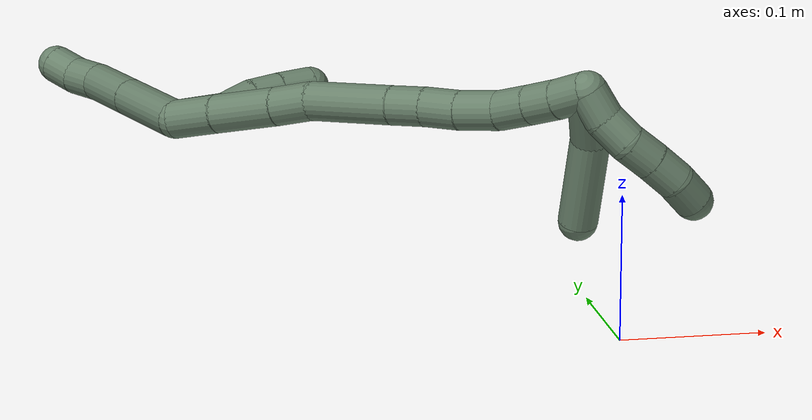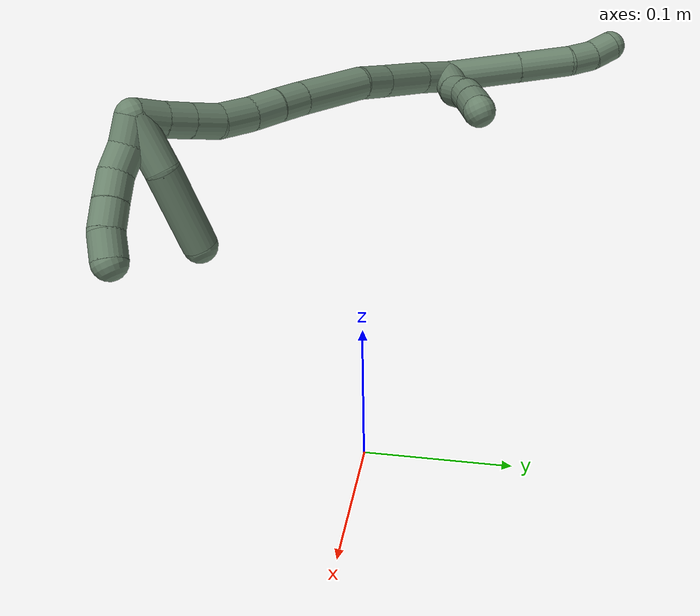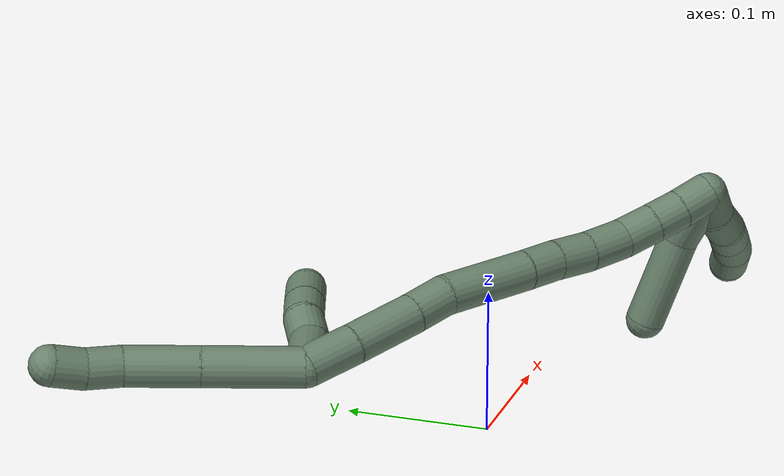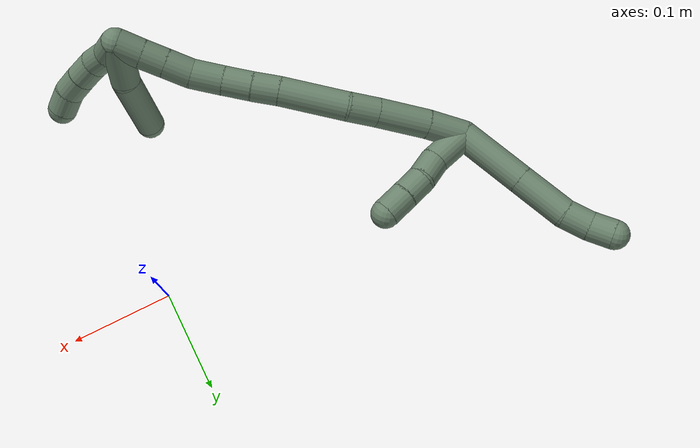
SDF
<sdf version="1.7">
 <world name="default">
  <model name="17">
   <static>0</static>
   <link name="17">
    <collision name="collision-cylinder-e_1_2_8">
     <pose>-0.013734 0.026094 -0.007672 -1.85674 -0.467612 0.616246</pose>
     <geometry><cylinder><radius>0.0125</radius><length>0.060938</length></cylinder></geometry>
     <surface>
      <friction><ode><mu>1.16</mu><mu2>1.16</mu2><slip1>0</slip1><slip2>0</slip2></ode></friction>
      <contact><ode><kp>1e+06</kp><kd>1</kd><max_vel>0</max_vel><min_depth>0.001</min_depth></ode></contact>
     </surface>
    </collision>
    <visual name="visual-cylinder-e_1_2_8">
     <pose>-0.013734 0.026094 -0.007672 -1.85674 -0.467612 0.616246</pose>
     <geometry><cylinder><radius>0.0125</radius><length>0.060938</length></cylinder></geometry>
     <material><ambient>0.415686 0.509804 0.423529 1</ambient></material>
    </visual>
    <collision name="collision-cylinder-e_2_8_9">
     <pose>-0.037782 0.071706 -0.021037 -1.85466 -0.469428 0.617322</pose>
     <geometry><cylinder><radius>0.0125</radius><length>0.045596</length></cylinder></geometry>
     <surface>
      <friction><ode><mu>1.16</mu><mu2>1.16</mu2><slip1>0</slip1><slip2>0</slip2></ode></friction>
      <contact><ode><kp>1e+06</kp><kd>1</kd><max_vel>0</max_vel><min_depth>0.001</min_depth></ode></contact>
     </surface>
    </collision>
    <visual name="visual-cylinder-e_2_8_9">
     <pose>-0.037782 0.071706 -0.021037 -1.85466 -0.469428 0.617322</pose>
     <geometry><cylinder><radius>0.0125</radius><length>0.045596</length></cylinder></geometry>
     <material><ambient>0.415686 0.509804 0.423529 1</ambient></material>
    </visual>
    <collision name="collision-cylinder-e_3_9_10">
     <pose>-0.055018 0.100139 -0.02806 -1.71873 -0.655007 0.750851</pose>
     <geometry><cylinder><radius>0.0125</radius><length>0.02273</length></cylinder></geometry>
     <surface>
      <friction><ode><mu>1.16</mu><mu2>1.16</mu2><slip1>0</slip1><slip2>0</slip2></ode></friction>
      <contact><ode><kp>1e+06</kp><kd>1</kd><max_vel>0</max_vel><min_depth>0.001</min_depth></ode></contact>
     </surface>
    </collision>
    <visual name="visual-cylinder-e_3_9_10">
     <pose>-0.055018 0.100139 -0.02806 -1.71873 -0.655007 0.750851</pose>
     <geometry><cylinder><radius>0.0125</radius><length>0.02273</length></cylinder></geometry>
     <material><ambient>0.415686 0.509804 0.423529 1</ambient></material>
    </visual>
    <collision name="collision-cylinder-e_4_10_6">
     <pose>-0.067568 0.11772 -0.028542 -1.47337 -0.573689 0.522864</pose>
     <geometry><cylinder><radius>0.0125</radius><length>0.020735</length></cylinder></geometry>
     <surface>
      <friction><ode><mu>1.16</mu><mu2>1.16</mu2><slip1>0</slip1><slip2>0</slip2></ode></friction>
      <contact><ode><kp>1e+06</kp><kd>1</kd><max_vel>0</max_vel><min_depth>0.001</min_depth></ode></contact>
     </surface>
    </collision>
    <visual name="visual-cylinder-e_4_10_6">
     <pose>-0.067568 0.11772 -0.028542 -1.47337 -0.573689 0.522864</pose>
     <geometry><cylinder><radius>0.0125</radius><length>0.020735</length></cylinder></geometry>
     <material><ambient>0.415686 0.509804 0.423529 1</ambient></material>
    </visual>
    <collision name="collision-cylinder-e_1_2_11">
     <pose>0.014577 0.002784 -0.008865 -2.8373 1.00331 -2.59638</pose>
     <geometry><cylinder><radius>0.0125</radius><length>0.034572</length></cylinder></geometry>
     <surface>
      <friction><ode><mu>1.16</mu><mu2>1.16</mu2><slip1>0</slip1><slip2>0</slip2></ode></friction>
      <contact><ode><kp>1e+06</kp><kd>1</kd><max_vel>0</max_vel><min_depth>0.001</min_depth></ode></contact>
     </surface>
    </collision>
    <visual name="visual-cylinder-e_1_2_11">
     <pose>0.014577 0.002784 -0.008865 -2.8373 1.00331 -2.59638</pose>
     <geometry><cylinder><radius>0.0125</radius><length>0.034572</length></cylinder></geometry>
     <material><ambient>0.415686 0.509804 0.423529 1</ambient></material>
    </visual>
    <collision name="collision-cylinder-e_2_11_12">
     <pose>0.038124 0.010724 -0.022094 -2.27324 0.925342 -1.64368</pose>
     <geometry><cylinder><radius>0.0125</radius><length>0.02246</length></cylinder></geometry>
     <surface>
      <friction><ode><mu>1.16</mu><mu2>1.16</mu2><slip1>0</slip1><slip2>0</slip2></ode></friction>
      <contact><ode><kp>1e+06</kp><kd>1</kd><max_vel>0</max_vel><min_depth>0.001</min_depth></ode></contact>
     </surface>
    </collision>
    <visual name="visual-cylinder-e_2_11_12">
     <pose>0.038124 0.010724 -0.022094 -2.27324 0.925342 -1.64368</pose>
     <geometry><cylinder><radius>0.0125</radius><length>0.02246</length></cylinder></geometry>
     <material><ambient>0.415686 0.509804 0.423529 1</ambient></material>
    </visual>
    <collision name="collision-cylinder-e_3_12_13">
     <pose>0.055733 0.018329 -0.031326 -2.67547 1.00802 -2.32872</pose>
     <geometry><cylinder><radius>0.0125</radius><length>0.020427</length></cylinder></geometry>
     <surface>
      <friction><ode><mu>1.16</mu><mu2>1.16</mu2><slip1>0</slip1><slip2>0</slip2></ode></friction>
      <contact><ode><kp>1e+06</kp><kd>1</kd><max_vel>0</max_vel><min_depth>0.001</min_depth></ode></contact>
     </surface>
    </collision>
    <visual name="visual-cylinder-e_3_12_13">
     <pose>0.055733 0.018329 -0.031326 -2.67547 1.00802 -2.32872</pose>
     <geometry><cylinder><radius>0.0125</radius><length>0.020427</length></cylinder></geometry>
     <material><ambient>0.415686 0.509804 0.423529 1</ambient></material>
    </visual>
    <collision name="collision-cylinder-e_4_13_5">
     <pose>0.073821 0.023094 -0.041883 -2.75497 0.994467 -2.44925</pose>
     <geometry><cylinder><radius>0.0125</radius><length>0.022541</length></cylinder></geometry>
     <surface>
      <friction><ode><mu>1.16</mu><mu2>1.16</mu2><slip1>0</slip1><slip2>0</slip2></ode></friction>
      <contact><ode><kp>1e+06</kp><kd>1</kd><max_vel>0</max_vel><min_depth>0.001</min_depth></ode></contact>
     </surface>
    </collision>
    <visual name="visual-cylinder-e_4_13_5">
     <pose>0.073821 0.023094 -0.041883 -2.75497 0.994467 -2.44925</pose>
     <geometry><cylinder><radius>0.0125</radius><length>0.022541</length></cylinder></geometry>
     <material><ambient>0.415686 0.509804 0.423529 1</ambient></material>
    </visual>
    <collision name="collision-cylinder-e_1_2_14">
     <pose>0.014027 -0.008222 0.002383 1.28871 1.02282 0.798071</pose>
     <geometry><cylinder><radius>0.0125</radius><length>0.032865</length></cylinder></geometry>
     <surface>
      <friction><ode><mu>1.16</mu><mu2>1.16</mu2><slip1>0</slip1><slip2>0</slip2></ode></friction>
      <contact><ode><kp>1e+06</kp><kd>1</kd><max_vel>0</max_vel><min_depth>0.001</min_depth></ode></contact>
     </surface>
    </collision>
    <visual name="visual-cylinder-e_1_2_14">
     <pose>0.014027 -0.008222 0.002383 1.28871 1.02282 0.798071</pose>
     <geometry><cylinder><radius>0.0125</radius><length>0.032865</length></cylinder></geometry>
     <material><ambient>0.415686 0.509804 0.423529 1</ambient></material>
    </visual>
    <collision name="collision-cylinder-e_2_14_15">
     <pose>0.04745 -0.026805 0.006834 1.37377 1.07207 0.906697</pose>
     <geometry><cylinder><radius>0.0125</radius><length>0.044173</length></cylinder></geometry>
     <surface>
      <friction><ode><mu>1.16</mu><mu2>1.16</mu2><slip1>0</slip1><slip2>0</slip2></ode></friction>
      <contact><ode><kp>1e+06</kp><kd>1</kd><max_vel>0</max_vel><min_depth>0.001</min_depth></ode></contact>
     </surface>
    </collision>
    <visual name="visual-cylinder-e_2_14_15">
     <pose>0.04745 -0.026805 0.006834 1.37377 1.07207 0.906697</pose>
     <geometry><cylinder><radius>0.0125</radius><length>0.044173</length></cylinder></geometry>
     <material><ambient>0.415686 0.509804 0.423529 1</ambient></material>
    </visual>
    <collision name="collision-cylinder-e_3_15_16">
     <pose>0.078296 -0.042667 0.01001 1.37213 1.11499 0.943951</pose>
     <geometry><cylinder><radius>0.0125</radius><length>0.025504</length></cylinder></geometry>
     <surface>
      <friction><ode><mu>1.16</mu><mu2>1.16</mu2><slip1>0</slip1><slip2>0</slip2></ode></friction>
      <contact><ode><kp>1e+06</kp><kd>1</kd><max_vel>0</max_vel><min_depth>0.001</min_depth></ode></contact>
     </surface>
    </collision>
    <visual name="visual-cylinder-e_3_15_16">
     <pose>0.078296 -0.042667 0.01001 1.37213 1.11499 0.943951</pose>
     <geometry><cylinder><radius>0.0125</radius><length>0.025504</length></cylinder></geometry>
     <material><ambient>0.415686 0.509804 0.423529 1</ambient></material>
    </visual>
    <collision name="collision-cylinder-e_4_16_17">
     <pose>0.113301 -0.065191 0.011513 1.54758 0.944959 0.926269</pose>
     <geometry><cylinder><radius>0.0125</radius><length>0.058128</length></cylinder></geometry>
     <surface>
      <friction><ode><mu>1.16</mu><mu2>1.16</mu2><slip1>0</slip1><slip2>0</slip2></ode></friction>
      <contact><ode><kp>1e+06</kp><kd>1</kd><max_vel>0</max_vel><min_depth>0.001</min_depth></ode></contact>
     </surface>
    </collision>
    <visual name="visual-cylinder-e_4_16_17">
     <pose>0.113301 -0.065191 0.011513 1.54758 0.944959 0.926269</pose>
     <geometry><cylinder><radius>0.0125</radius><length>0.058128</length></cylinder></geometry>
     <material><ambient>0.415686 0.509804 0.423529 1</ambient></material>
    </visual>
    <collision name="collision-cylinder-e_5_17_18">
     <pose>0.146359 -0.088516 0.01161 1.61799 0.984433 1.02427</pose>
     <geometry><cylinder><radius>0.0125</radius><length>0.022816</length></cylinder></geometry>
     <surface>
      <friction><ode><mu>1.16</mu><mu2>1.16</mu2><slip1>0</slip1><slip2>0</slip2></ode></friction>
      <contact><ode><kp>1e+06</kp><kd>1</kd><max_vel>0</max_vel><min_depth>0.001</min_depth></ode></contact>
     </surface>
    </collision>
    <visual name="visual-cylinder-e_5_17_18">
     <pose>0.146359 -0.088516 0.01161 1.61799 0.984433 1.02427</pose>
     <geometry><cylinder><radius>0.0125</radius><length>0.022816</length></cylinder></geometry>
     <material><ambient>0.415686 0.509804 0.423529 1</ambient></material>
    </visual>
    <collision name="collision-cylinder-e_6_18_19">
     <pose>0.165518 -0.102181 0.011025 1.60981 0.919195 0.950586</pose>
     <geometry><cylinder><radius>0.0125</radius><length>0.024289</length></cylinder></geometry>
     <surface>
      <friction><ode><mu>1.16</mu><mu2>1.16</mu2><slip1>0</slip1><slip2>0</slip2></ode></friction>
      <contact><ode><kp>1e+06</kp><kd>1</kd><max_vel>0</max_vel><min_depth>0.001</min_depth></ode></contact>
     </surface>
    </collision>
    <visual name="visual-cylinder-e_6_18_19">
     <pose>0.165518 -0.102181 0.011025 1.60981 0.919195 0.950586</pose>
     <geometry><cylinder><radius>0.0125</radius><length>0.024289</length></cylinder></geometry>
     <material><ambient>0.415686 0.509804 0.423529 1</ambient></material>
    </visual>
    <collision name="collision-cylinder-e_7_19_20">
     <pose>0.186518 -0.116966 0.011133 1.51763 0.990583 0.94675</pose>
     <geometry><cylinder><radius>0.0125</radius><length>0.027128</length></cylinder></geometry>
     <surface>
      <friction><ode><mu>1.16</mu><mu2>1.16</mu2><slip1>0</slip1><slip2>0</slip2></ode></friction>
      <contact><ode><kp>1e+06</kp><kd>1</kd><max_vel>0</max_vel><min_depth>0.001</min_depth></ode></contact>
     </surface>
    </collision>
    <visual name="visual-cylinder-e_7_19_20">
     <pose>0.186518 -0.116966 0.011133 1.51763 0.990583 0.94675</pose>
     <geometry><cylinder><radius>0.0125</radius><length>0.027128</length></cylinder></geometry>
     <material><ambient>0.415686 0.509804 0.423529 1</ambient></material>
    </visual>
    <collision name="collision-cylinder-e_8_20_21">
     <pose>0.207402 -0.130212 0.014261 1.13184 0.97771 0.651694</pose>
     <geometry><cylinder><radius>0.0125</radius><length>0.023007</length></cylinder></geometry>
     <surface>
      <friction><ode><mu>1.16</mu><mu2>1.16</mu2><slip1>0</slip1><slip2>0</slip2></ode></friction>
      <contact><ode><kp>1e+06</kp><kd>1</kd><max_vel>0</max_vel><min_depth>0.001</min_depth></ode></contact>
     </surface>
    </collision>
    <visual name="visual-cylinder-e_8_20_21">
     <pose>0.207402 -0.130212 0.014261 1.13184 0.97771 0.651694</pose>
     <geometry><cylinder><radius>0.0125</radius><length>0.023007</length></cylinder></geometry>
     <material><ambient>0.415686 0.509804 0.423529 1</ambient></material>
    </visual>
    <collision name="collision-cylinder-e_9_21_22">
     <pose>0.225463 -0.141059 0.019469 1.11322 0.989139 0.6475</pose>
     <geometry><cylinder><radius>0.0125</radius><length>0.020398</length></cylinder></geometry>
     <surface>
      <friction><ode><mu>1.16</mu><mu2>1.16</mu2><slip1>0</slip1><slip2>0</slip2></ode></friction>
      <contact><ode><kp>1e+06</kp><kd>1</kd><max_vel>0</max_vel><min_depth>0.001</min_depth></ode></contact>
     </surface>
    </collision>
    <visual name="visual-cylinder-e_9_21_22">
     <pose>0.225463 -0.141059 0.019469 1.11322 0.989139 0.6475</pose>
     <geometry><cylinder><radius>0.0125</radius><length>0.020398</length></cylinder></geometry>
     <material><ambient>0.415686 0.509804 0.423529 1</ambient></material>
    </visual>
    <collision name="collision-cylinder-e_10_22_1">
     <pose>0.243149 -0.15098 0.025058 1.0042 1.00654 0.587086</pose>
     <geometry><cylinder><radius>0.0125</radius><length>0.021691</length></cylinder></geometry>
     <surface>
      <friction><ode><mu>1.16</mu><mu2>1.16</mu2><slip1>0</slip1><slip2>0</slip2></ode></friction>
      <contact><ode><kp>1e+06</kp><kd>1</kd><max_vel>0</max_vel><min_depth>0.001</min_depth></ode></contact>
     </surface>
    </collision>
    <visual name="visual-cylinder-e_10_22_1">
     <pose>0.243149 -0.15098 0.025058 1.0042 1.00654 0.587086</pose>
     <geometry><cylinder><radius>0.0125</radius><length>0.021691</length></cylinder></geometry>
     <material><ambient>0.415686 0.509804 0.423529 1</ambient></material>
    </visual>
    <collision name="collision-cylinder-e_1_1_23">
     <pose>0.253314 -0.161735 0.020131 2.51166 0.100288 0.305662</pose>
     <geometry><cylinder><radius>0.0125</radius><length>0.02</length></cylinder></geometry>
     <surface>
      <friction><ode><mu>1.16</mu><mu2>1.16</mu2><slip1>0</slip1><slip2>0</slip2></ode></friction>
      <contact><ode><kp>1e+06</kp><kd>1</kd><max_vel>0</max_vel><min_depth>0.001</min_depth></ode></contact>
     </surface>
    </collision>
    <visual name="visual-cylinder-e_1_1_23">
     <pose>0.253314 -0.161735 0.020131 2.51166 0.100288 0.305662</pose>
     <geometry><cylinder><radius>0.0125</radius><length>0.02</length></cylinder></geometry>
     <material><ambient>0.415686 0.509804 0.423529 1</ambient></material>
    </visual>
    <collision name="collision-cylinder-e_2_23_24">
     <pose>0.257833 -0.173571 0.004885 2.44927 0.359428 0.933198</pose>
     <geometry><cylinder><radius>0.0125</radius><length>0.02</length></cylinder></geometry>
     <surface>
      <friction><ode><mu>1.16</mu><mu2>1.16</mu2><slip1>0</slip1><slip2>0</slip2></ode></friction>
      <contact><ode><kp>1e+06</kp><kd>1</kd><max_vel>0</max_vel><min_depth>0.001</min_depth></ode></contact>
     </surface>
    </collision>
    <visual name="visual-cylinder-e_2_23_24">
     <pose>0.257833 -0.173571 0.004885 2.44927 0.359428 0.933198</pose>
     <geometry><cylinder><radius>0.0125</radius><length>0.02</length></cylinder></geometry>
     <material><ambient>0.415686 0.509804 0.423529 1</ambient></material>
    </visual>
    <collision name="collision-cylinder-e_3_24_25">
     <pose>0.265712 -0.183048 -0.010611 2.74198 0.451311 1.69587</pose>
     <geometry><cylinder><radius>0.0125</radius><length>0.02</length></cylinder></geometry>
     <surface>
      <friction><ode><mu>1.16</mu><mu2>1.16</mu2><slip1>0</slip1><slip2>0</slip2></ode></friction>
      <contact><ode><kp>1e+06</kp><kd>1</kd><max_vel>0</max_vel><min_depth>0.001</min_depth></ode></contact>
     </surface>
    </collision>
    <visual name="visual-cylinder-e_3_24_25">
     <pose>0.265712 -0.183048 -0.010611 2.74198 0.451311 1.69587</pose>
     <geometry><cylinder><radius>0.0125</radius><length>0.02</length></cylinder></geometry>
     <material><ambient>0.415686 0.509804 0.423529 1</ambient></material>
    </visual>
    <collision name="collision-cylinder-e_4_25_26">
     <pose>0.27402 -0.190061 -0.027391 2.74934 0.405698 1.60541</pose>
     <geometry><cylinder><radius>0.0125</radius><length>0.02</length></cylinder></geometry>
     <surface>
      <friction><ode><mu>1.16</mu><mu2>1.16</mu2><slip1>0</slip1><slip2>0</slip2></ode></friction>
      <contact><ode><kp>1e+06</kp><kd>1</kd><max_vel>0</max_vel><min_depth>0.001</min_depth></ode></contact>
     </surface>
    </collision>
    <visual name="visual-cylinder-e_4_25_26">
     <pose>0.27402 -0.190061 -0.027391 2.74934 0.405698 1.60541</pose>
     <geometry><cylinder><radius>0.0125</radius><length>0.02</length></cylinder></geometry>
     <material><ambient>0.415686 0.509804 0.423529 1</ambient></material>
    </visual>
    <collision name="collision-cylinder-e_5_26_4">
     <pose>0.280404 -0.195385 -0.045409 2.95369 0.246191 1.83978</pose>
     <geometry><cylinder><radius>0.0125</radius><length>0.02</length></cylinder></geometry>
     <surface>
      <friction><ode><mu>1.16</mu><mu2>1.16</mu2><slip1>0</slip1><slip2>0</slip2></ode></friction>
      <contact><ode><kp>1e+06</kp><kd>1</kd><max_vel>0</max_vel><min_depth>0.001</min_depth></ode></contact>
     </surface>
    </collision>
    <visual name="visual-cylinder-e_5_26_4">
     <pose>0.280404 -0.195385 -0.045409 2.95369 0.246191 1.83978</pose>
     <geometry><cylinder><radius>0.0125</radius><length>0.02</length></cylinder></geometry>
     <material><ambient>0.415686 0.509804 0.423529 1</ambient></material>
    </visual>
    <collision name="collision-cylinder-e_1_1_27">
     <pose>0.246893 -0.156624 0.009325 3.10177 -0.279849 -2.86065</pose>
     <geometry><cylinder><radius>0.0125</radius><length>0.039248</length></cylinder></geometry>
     <surface>
      <friction><ode><mu>1.16</mu><mu2>1.16</mu2><slip1>0</slip1><slip2>0</slip2></ode></friction>
      <contact><ode><kp>1e+06</kp><kd>1</kd><max_vel>0</max_vel><min_depth>0.001</min_depth></ode></contact>
     </surface>
    </collision>
    <visual name="visual-cylinder-e_1_1_27">
     <pose>0.246893 -0.156624 0.009325 3.10177 -0.279849 -2.86065</pose>
     <geometry><cylinder><radius>0.0125</radius><length>0.039248</length></cylinder></geometry>
     <material><ambient>0.415686 0.509804 0.423529 1</ambient></material>
    </visual>
    <collision name="collision-cylinder-e_2_27_3">
     <pose>0.226958 -0.162511 -0.035705 2.9479 -0.498189 -2.41195</pose>
     <geometry><cylinder><radius>0.0125</radius><length>0.060752</length></cylinder></geometry>
     <surface>
      <friction><ode><mu>1.16</mu><mu2>1.16</mu2><slip1>0</slip1><slip2>0</slip2></ode></friction>
      <contact><ode><kp>1e+06</kp><kd>1</kd><max_vel>0</max_vel><min_depth>0.001</min_depth></ode></contact>
     </surface>
    </collision>
    <visual name="visual-cylinder-e_2_27_3">
     <pose>0.226958 -0.162511 -0.035705 2.9479 -0.498189 -2.41195</pose>
     <geometry><cylinder><radius>0.0125</radius><length>0.060752</length></cylinder></geometry>
     <material><ambient>0.415686 0.509804 0.423529 1</ambient></material>
    </visual>
    <collision name="collision-sphere-3">
     <pose>0.212443 -0.167648 -0.06189 0 -0 0</pose>
     <geometry><sphere><radius>0.0125</radius></sphere></geometry>
     <surface>
      <friction><ode><mu>1.16</mu><mu2>1.16</mu2><slip1>0</slip1><slip2>0</slip2></ode></friction>
      <contact><ode><kp>1e+06</kp><kd>1</kd><max_vel>0</max_vel><min_depth>0.001</min_depth></ode></contact>
     </surface>
    </collision>
    <visual name="visual-sphere-3">
     <pose>0.212443 -0.167648 -0.06189 0 -0 0</pose>
     <geometry><sphere><radius>0.0125</radius></sphere></geometry>
     <material><ambient>0.415686 0.509804 0.423529 1</ambient></material>
    </visual>
    <collision name="collision-sphere-27">
     <pose>0.241473 -0.157375 -0.00952 0 -0 0</pose>
     <geometry><sphere><radius>0.0125</radius></sphere></geometry>
     <surface>
      <friction><ode><mu>1.16</mu><mu2>1.16</mu2><slip1>0</slip1><slip2>0</slip2></ode></friction>
      <contact><ode><kp>1e+06</kp><kd>1</kd><max_vel>0</max_vel><min_depth>0.001</min_depth></ode></contact>
     </surface>
    </collision>
    <visual name="visual-sphere-27">
     <pose>0.241473 -0.157375 -0.00952 0 -0 0</pose>
     <geometry><sphere><radius>0.0125</radius></sphere></geometry>
     <material><ambient>0.415686 0.509804 0.423529 1</ambient></material>
    </visual>
    <collision name="collision-sphere-4">
     <pose>0.282841 -0.197197 -0.054937 0 -0 0</pose>
     <geometry><sphere><radius>0.0125</radius></sphere></geometry>
     <surface>
      <friction><ode><mu>1.16</mu><mu2>1.16</mu2><slip1>0</slip1><slip2>0</slip2></ode></friction>
      <contact><ode><kp>1e+06</kp><kd>1</kd><max_vel>0</max_vel><min_depth>0.001</min_depth></ode></contact>
     </surface>
    </collision>
    <visual name="visual-sphere-4">
     <pose>0.282841 -0.197197 -0.054937 0 -0 0</pose>
     <geometry><sphere><radius>0.0125</radius></sphere></geometry>
     <material><ambient>0.415686 0.509804 0.423529 1</ambient></material>
    </visual>
    <collision name="collision-sphere-26">
     <pose>0.277967 -0.193574 -0.035881 0 -0 0</pose>
     <geometry><sphere><radius>0.0125</radius></sphere></geometry>
     <surface>
      <friction><ode><mu>1.16</mu><mu2>1.16</mu2><slip1>0</slip1><slip2>0</slip2></ode></friction>
      <contact><ode><kp>1e+06</kp><kd>1</kd><max_vel>0</max_vel><min_depth>0.001</min_depth></ode></contact>
     </surface>
    </collision>
    <visual name="visual-sphere-26">
     <pose>0.277967 -0.193574 -0.035881 0 -0 0</pose>
     <geometry><sphere><radius>0.0125</radius></sphere></geometry>
     <material><ambient>0.415686 0.509804 0.423529 1</ambient></material>
    </visual>
    <collision name="collision-sphere-25">
     <pose>0.270073 -0.186549 -0.0189 0 -0 0</pose>
     <geometry><sphere><radius>0.0125</radius></sphere></geometry>
     <surface>
      <friction><ode><mu>1.16</mu><mu2>1.16</mu2><slip1>0</slip1><slip2>0</slip2></ode></friction>
      <contact><ode><kp>1e+06</kp><kd>1</kd><max_vel>0</max_vel><min_depth>0.001</min_depth></ode></contact>
     </surface>
    </collision>
    <visual name="visual-sphere-25">
     <pose>0.270073 -0.186549 -0.0189 0 -0 0</pose>
     <geometry><sphere><radius>0.0125</radius></sphere></geometry>
     <material><ambient>0.415686 0.509804 0.423529 1</ambient></material>
    </visual>
    <collision name="collision-sphere-24">
     <pose>0.26135 -0.179547 -0.002321 0 -0 0</pose>
     <geometry><sphere><radius>0.0125</radius></sphere></geometry>
     <surface>
      <friction><ode><mu>1.16</mu><mu2>1.16</mu2><slip1>0</slip1><slip2>0</slip2></ode></friction>
      <contact><ode><kp>1e+06</kp><kd>1</kd><max_vel>0</max_vel><min_depth>0.001</min_depth></ode></contact>
     </surface>
    </collision>
    <visual name="visual-sphere-24">
     <pose>0.26135 -0.179547 -0.002321 0 -0 0</pose>
     <geometry><sphere><radius>0.0125</radius></sphere></geometry>
     <material><ambient>0.415686 0.509804 0.423529 1</ambient></material>
    </visual>
    <collision name="collision-sphere-23">
     <pose>0.254316 -0.167596 0.012091 0 -0 0</pose>
     <geometry><sphere><radius>0.0125</radius></sphere></geometry>
     <surface>
      <friction><ode><mu>1.16</mu><mu2>1.16</mu2><slip1>0</slip1><slip2>0</slip2></ode></friction>
      <contact><ode><kp>1e+06</kp><kd>1</kd><max_vel>0</max_vel><min_depth>0.001</min_depth></ode></contact>
     </surface>
    </collision>
    <visual name="visual-sphere-23">
     <pose>0.254316 -0.167596 0.012091 0 -0 0</pose>
     <geometry><sphere><radius>0.0125</radius></sphere></geometry>
     <material><ambient>0.415686 0.509804 0.423529 1</ambient></material>
    </visual>
    <collision name="collision-sphere-1">
     <pose>0.252313 -0.155873 0.028171 0 -0 0</pose>
     <geometry><sphere><radius>0.0125</radius></sphere></geometry>
     <surface>
      <friction><ode><mu>1.16</mu><mu2>1.16</mu2><slip1>0</slip1><slip2>0</slip2></ode></friction>
      <contact><ode><kp>1e+06</kp><kd>1</kd><max_vel>0</max_vel><min_depth>0.001</min_depth></ode></contact>
     </surface>
    </collision>
    <visual name="visual-sphere-1">
     <pose>0.252313 -0.155873 0.028171 0 -0 0</pose>
     <geometry><sphere><radius>0.0125</radius></sphere></geometry>
     <material><ambient>0.415686 0.509804 0.423529 1</ambient></material>
    </visual>
    <collision name="collision-sphere-22">
     <pose>0.233984 -0.146086 0.021944 0 -0 0</pose>
     <geometry><sphere><radius>0.0125</radius></sphere></geometry>
     <surface>
      <friction><ode><mu>1.16</mu><mu2>1.16</mu2><slip1>0</slip1><slip2>0</slip2></ode></friction>
      <contact><ode><kp>1e+06</kp><kd>1</kd><max_vel>0</max_vel><min_depth>0.001</min_depth></ode></contact>
     </surface>
    </collision>
    <visual name="visual-sphere-22">
     <pose>0.233984 -0.146086 0.021944 0 -0 0</pose>
     <geometry><sphere><radius>0.0125</radius></sphere></geometry>
     <material><ambient>0.415686 0.509804 0.423529 1</ambient></material>
    </visual>
    <collision name="collision-sphere-21">
     <pose>0.216941 -0.136032 0.016993 0 -0 0</pose>
     <geometry><sphere><radius>0.0125</radius></sphere></geometry>
     <surface>
      <friction><ode><mu>1.16</mu><mu2>1.16</mu2><slip1>0</slip1><slip2>0</slip2></ode></friction>
      <contact><ode><kp>1e+06</kp><kd>1</kd><max_vel>0</max_vel><min_depth>0.001</min_depth></ode></contact>
     </surface>
    </collision>
    <visual name="visual-sphere-21">
     <pose>0.216941 -0.136032 0.016993 0 -0 0</pose>
     <geometry><sphere><radius>0.0125</radius></sphere></geometry>
     <material><ambient>0.415686 0.509804 0.423529 1</ambient></material>
    </visual>
    <collision name="collision-sphere-11">
     <pose>0.029153 0.005568 -0.017729 0 -0 0</pose>
     <geometry><sphere><radius>0.0125</radius></sphere></geometry>
     <surface>
      <friction><ode><mu>1.16</mu><mu2>1.16</mu2><slip1>0</slip1><slip2>0</slip2></ode></friction>
      <contact><ode><kp>1e+06</kp><kd>1</kd><max_vel>0</max_vel><min_depth>0.001</min_depth></ode></contact>
     </surface>
    </collision>
    <visual name="visual-sphere-11">
     <pose>0.029153 0.005568 -0.017729 0 -0 0</pose>
     <geometry><sphere><radius>0.0125</radius></sphere></geometry>
     <material><ambient>0.415686 0.509804 0.423529 1</ambient></material>
    </visual>
    <collision name="collision-sphere-6">
     <pose>-0.073195 0.126387 -0.027695 0 -0 0</pose>
     <geometry><sphere><radius>0.0125</radius></sphere></geometry>
     <surface>
      <friction><ode><mu>1.16</mu><mu2>1.16</mu2><slip1>0</slip1><slip2>0</slip2></ode></friction>
      <contact><ode><kp>1e+06</kp><kd>1</kd><max_vel>0</max_vel><min_depth>0.001</min_depth></ode></contact>
     </surface>
    </collision>
    <visual name="visual-sphere-6">
     <pose>-0.073195 0.126387 -0.027695 0 -0 0</pose>
     <geometry><sphere><radius>0.0125</radius></sphere></geometry>
     <material><ambient>0.415686 0.509804 0.423529 1</ambient></material>
    </visual>
    <collision name="collision-sphere-10">
     <pose>-0.061941 0.109054 -0.029389 0 -0 0</pose>
     <geometry><sphere><radius>0.0125</radius></sphere></geometry>
     <surface>
      <friction><ode><mu>1.16</mu><mu2>1.16</mu2><slip1>0</slip1><slip2>0</slip2></ode></friction>
      <contact><ode><kp>1e+06</kp><kd>1</kd><max_vel>0</max_vel><min_depth>0.001</min_depth></ode></contact>
     </surface>
    </collision>
    <visual name="visual-sphere-10">
     <pose>-0.061941 0.109054 -0.029389 0 -0 0</pose>
     <geometry><sphere><radius>0.0125</radius></sphere></geometry>
     <material><ambient>0.415686 0.509804 0.423529 1</ambient></material>
    </visual>
    <collision name="collision-sphere-9">
     <pose>-0.048095 0.091225 -0.026732 0 -0 0</pose>
     <geometry><sphere><radius>0.0125</radius></sphere></geometry>
     <surface>
      <friction><ode><mu>1.16</mu><mu2>1.16</mu2><slip1>0</slip1><slip2>0</slip2></ode></friction>
      <contact><ode><kp>1e+06</kp><kd>1</kd><max_vel>0</max_vel><min_depth>0.001</min_depth></ode></contact>
     </surface>
    </collision>
    <visual name="visual-sphere-9">
     <pose>-0.048095 0.091225 -0.026732 0 -0 0</pose>
     <geometry><sphere><radius>0.0125</radius></sphere></geometry>
     <material><ambient>0.415686 0.509804 0.423529 1</ambient></material>
    </visual>
    <collision name="collision-sphere-2">
     <geometry><sphere><radius>0.0125</radius></sphere></geometry>
     <surface>
      <friction><ode><mu>1.16</mu><mu2>1.16</mu2><slip1>0</slip1><slip2>0</slip2></ode></friction>
      <contact><ode><kp>1e+06</kp><kd>1</kd><max_vel>0</max_vel><min_depth>0.001</min_depth></ode></contact>
     </surface>
    </collision>
    <visual name="visual-sphere-2">
     <geometry><sphere><radius>0.0125</radius></sphere></geometry>
     <material><ambient>0.415686 0.509804 0.423529 1</ambient></material>
    </visual>
    <collision name="collision-sphere-19">
     <pose>0.175174 -0.109541 0.010738 0 -0 0</pose>
     <geometry><sphere><radius>0.0125</radius></sphere></geometry>
     <surface>
      <friction><ode><mu>1.16</mu><mu2>1.16</mu2><slip1>0</slip1><slip2>0</slip2></ode></friction>
      <contact><ode><kp>1e+06</kp><kd>1</kd><max_vel>0</max_vel><min_depth>0.001</min_depth></ode></contact>
     </surface>
    </collision>
    <visual name="visual-sphere-19">
     <pose>0.175174 -0.109541 0.010738 0 -0 0</pose>
     <geometry><sphere><radius>0.0125</radius></sphere></geometry>
     <material><ambient>0.415686 0.509804 0.423529 1</ambient></material>
    </visual>
    <collision name="collision-sphere-8">
     <pose>-0.027468 0.052188 -0.015343 0 -0 0</pose>
     <geometry><sphere><radius>0.0125</radius></sphere></geometry>
     <surface>
      <friction><ode><mu>1.16</mu><mu2>1.16</mu2><slip1>0</slip1><slip2>0</slip2></ode></friction>
      <contact><ode><kp>1e+06</kp><kd>1</kd><max_vel>0</max_vel><min_depth>0.001</min_depth></ode></contact>
     </surface>
    </collision>
    <visual name="visual-sphere-8">
     <pose>-0.027468 0.052188 -0.015343 0 -0 0</pose>
     <geometry><sphere><radius>0.0125</radius></sphere></geometry>
     <material><ambient>0.415686 0.509804 0.423529 1</ambient></material>
    </visual>
    <collision name="collision-sphere-12">
     <pose>0.047095 0.01588 -0.026458 0 -0 0</pose>
     <geometry><sphere><radius>0.0125</radius></sphere></geometry>
     <surface>
      <friction><ode><mu>1.16</mu><mu2>1.16</mu2><slip1>0</slip1><slip2>0</slip2></ode></friction>
      <contact><ode><kp>1e+06</kp><kd>1</kd><max_vel>0</max_vel><min_depth>0.001</min_depth></ode></contact>
     </surface>
    </collision>
    <visual name="visual-sphere-12">
     <pose>0.047095 0.01588 -0.026458 0 -0 0</pose>
     <geometry><sphere><radius>0.0125</radius></sphere></geometry>
     <material><ambient>0.415686 0.509804 0.423529 1</ambient></material>
    </visual>
    <collision name="collision-sphere-13">
     <pose>0.064371 0.020778 -0.036194 0 -0 0</pose>
     <geometry><sphere><radius>0.0125</radius></sphere></geometry>
     <surface>
      <friction><ode><mu>1.16</mu><mu2>1.16</mu2><slip1>0</slip1><slip2>0</slip2></ode></friction>
      <contact><ode><kp>1e+06</kp><kd>1</kd><max_vel>0</max_vel><min_depth>0.001</min_depth></ode></contact>
     </surface>
    </collision>
    <visual name="visual-sphere-13">
     <pose>0.064371 0.020778 -0.036194 0 -0 0</pose>
     <geometry><sphere><radius>0.0125</radius></sphere></geometry>
     <material><ambient>0.415686 0.509804 0.423529 1</ambient></material>
    </visual>
    <collision name="collision-sphere-5">
     <pose>0.083271 0.02541 -0.047571 0 -0 0</pose>
     <geometry><sphere><radius>0.0125</radius></sphere></geometry>
     <surface>
      <friction><ode><mu>1.16</mu><mu2>1.16</mu2><slip1>0</slip1><slip2>0</slip2></ode></friction>
      <contact><ode><kp>1e+06</kp><kd>1</kd><max_vel>0</max_vel><min_depth>0.001</min_depth></ode></contact>
     </surface>
    </collision>
    <visual name="visual-sphere-5">
     <pose>0.083271 0.02541 -0.047571 0 -0 0</pose>
     <geometry><sphere><radius>0.0125</radius></sphere></geometry>
     <material><ambient>0.415686 0.509804 0.423529 1</ambient></material>
    </visual>
    <collision name="collision-sphere-14">
     <pose>0.028053 -0.016445 0.004766 0 -0 0</pose>
     <geometry><sphere><radius>0.0125</radius></sphere></geometry>
     <surface>
      <friction><ode><mu>1.16</mu><mu2>1.16</mu2><slip1>0</slip1><slip2>0</slip2></ode></friction>
      <contact><ode><kp>1e+06</kp><kd>1</kd><max_vel>0</max_vel><min_depth>0.001</min_depth></ode></contact>
     </surface>
    </collision>
    <visual name="visual-sphere-14">
     <pose>0.028053 -0.016445 0.004766 0 -0 0</pose>
     <geometry><sphere><radius>0.0125</radius></sphere></geometry>
     <material><ambient>0.415686 0.509804 0.423529 1</ambient></material>
    </visual>
    <collision name="collision-sphere-15">
     <pose>0.066846 -0.037165 0.008902 0 -0 0</pose>
     <geometry><sphere><radius>0.0125</radius></sphere></geometry>
     <surface>
      <friction><ode><mu>1.16</mu><mu2>1.16</mu2><slip1>0</slip1><slip2>0</slip2></ode></friction>
      <contact><ode><kp>1e+06</kp><kd>1</kd><max_vel>0</max_vel><min_depth>0.001</min_depth></ode></contact>
     </surface>
    </collision>
    <visual name="visual-sphere-15">
     <pose>0.066846 -0.037165 0.008902 0 -0 0</pose>
     <geometry><sphere><radius>0.0125</radius></sphere></geometry>
     <material><ambient>0.415686 0.509804 0.423529 1</ambient></material>
    </visual>
    <collision name="collision-sphere-16">
     <pose>0.089746 -0.04817 0.011118 0 -0 0</pose>
     <geometry><sphere><radius>0.0125</radius></sphere></geometry>
     <surface>
      <friction><ode><mu>1.16</mu><mu2>1.16</mu2><slip1>0</slip1><slip2>0</slip2></ode></friction>
      <contact><ode><kp>1e+06</kp><kd>1</kd><max_vel>0</max_vel><min_depth>0.001</min_depth></ode></contact>
     </surface>
    </collision>
    <visual name="visual-sphere-16">
     <pose>0.089746 -0.04817 0.011118 0 -0 0</pose>
     <geometry><sphere><radius>0.0125</radius></sphere></geometry>
     <material><ambient>0.415686 0.509804 0.423529 1</ambient></material>
    </visual>
    <collision name="collision-sphere-17">
     <pose>0.136857 -0.082211 0.011908 0 -0 0</pose>
     <geometry><sphere><radius>0.0125</radius></sphere></geometry>
     <surface>
      <friction><ode><mu>1.16</mu><mu2>1.16</mu2><slip1>0</slip1><slip2>0</slip2></ode></friction>
      <contact><ode><kp>1e+06</kp><kd>1</kd><max_vel>0</max_vel><min_depth>0.001</min_depth></ode></contact>
     </surface>
    </collision>
    <visual name="visual-sphere-17">
     <pose>0.136857 -0.082211 0.011908 0 -0 0</pose>
     <geometry><sphere><radius>0.0125</radius></sphere></geometry>
     <material><ambient>0.415686 0.509804 0.423529 1</ambient></material>
    </visual>
    <collision name="collision-sphere-18">
     <pose>0.155862 -0.094822 0.011312 0 -0 0</pose>
     <geometry><sphere><radius>0.0125</radius></sphere></geometry>
     <surface>
      <friction><ode><mu>1.16</mu><mu2>1.16</mu2><slip1>0</slip1><slip2>0</slip2></ode></friction>
      <contact><ode><kp>1e+06</kp><kd>1</kd><max_vel>0</max_vel><min_depth>0.001</min_depth></ode></contact>
     </surface>
    </collision>
    <visual name="visual-sphere-18">
     <pose>0.155862 -0.094822 0.011312 0 -0 0</pose>
     <geometry><sphere><radius>0.0125</radius></sphere></geometry>
     <material><ambient>0.415686 0.509804 0.423529 1</ambient></material>
    </visual>
    <collision name="collision-sphere-20">
     <pose>0.197863 -0.124392 0.011528 0 -0 0</pose>
     <geometry><sphere><radius>0.0125</radius></sphere></geometry>
     <surface>
      <friction><ode><mu>1.16</mu><mu2>1.16</mu2><slip1>0</slip1><slip2>0</slip2></ode></friction>
      <contact><ode><kp>1e+06</kp><kd>1</kd><max_vel>0</max_vel><min_depth>0.001</min_depth></ode></contact>
     </surface>
    </collision>
    <visual name="visual-sphere-20">
     <pose>0.197863 -0.124392 0.011528 0 -0 0</pose>
     <geometry><sphere><radius>0.0125</radius></sphere></geometry>
     <material><ambient>0.415686 0.509804 0.423529 1</ambient></material>
    </visual>
    <inertial>
     <pose>0.116346 -0.061922 -0.006141 0 -0 0</pose>
     <mass>0.75</mass>
     <inertia><ixx>6.3e-05</ixx><ixy>0</ixy><ixz>0</ixz><iyy>8.7e-05</iyy><iyz>0</iyz><izz>-3.9e-05</izz></inertia>
    </inertial>
   </link>
   <pose>-0.291872 0.021768 0.158877 0.566323 -0.432289 -0.148875</pose>
  </model>
 </world>
</sdf>
